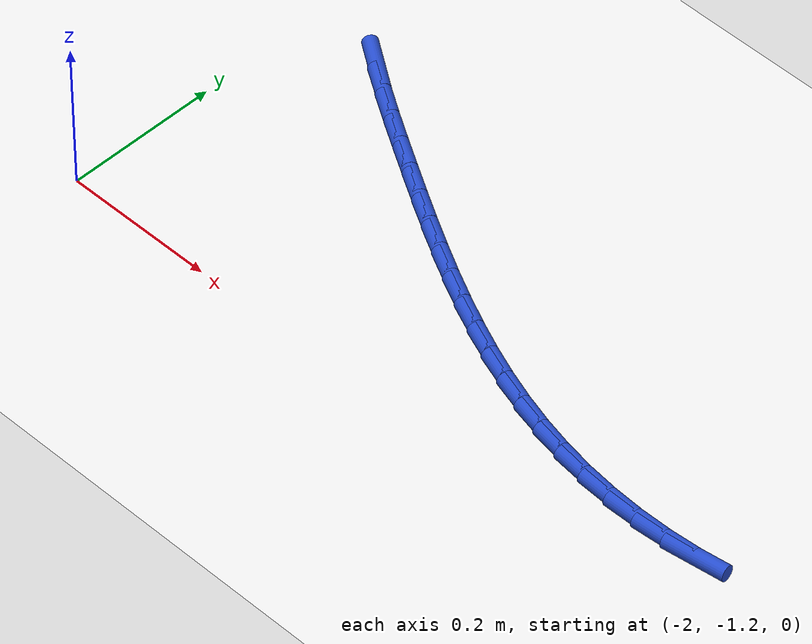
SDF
<sdf version="1.6">
 <world name="default">
  <model name="ground_plane">
   <static>1</static>
   <link name="link">
    <collision name="collision">
     <geometry><plane><normal>0 0 1</normal><size>100 100</size></plane></geometry>
     <surface><friction><ode><mu>100</mu><mu2>50</mu2></ode></friction></surface>
    </collision>
    <visual name="visual">
     <cast_shadows>0</cast_shadows>
     <geometry><plane><normal>0 0 1</normal><size>100 100</size></plane></geometry>
     <material>
      <script><uri>file://media/materials/scripts/gazebo.material</uri><name>Gazebo/WhiteGlow</name></script>
     </material>
    </visual>
   </link>
  </model>
  <model name="line">
   <link name="link_108">
    <pose>-1.8869920956878266 -0.8427963875069038 0.01 0 1.57 -0.600057680319079</pose>
    <collision name="collision">
     <geometry><cylinder><radius>0.01</radius><length>0.08</length></cylinder></geometry>
    </collision>
    <visual name="visual">
     <material>
      <script><name>Gazebo/Blue</name><uri>file://media/materials/scripts/gazebo.material</uri></script>
     </material>
     <geometry><cylinder><radius>0.01</radius><length>0.08</length></cylinder></geometry>
    </visual>
   </link>
   <link name="link_109">
    <pose>-1.852074827539309 -0.8666875327071744 0.01 0 1.57 -0.5691763671136789</pose>
    <collision name="collision">
     <geometry><cylinder><radius>0.01</radius><length>0.08</length></cylinder></geometry>
    </collision>
    <visual name="visual">
     <material>
      <script><name>Gazebo/Blue</name><uri>file://media/materials/scripts/gazebo.material</uri></script>
     </material>
     <geometry><cylinder><radius>0.01</radius><length>0.08</length></cylinder></geometry>
    </visual>
   </link>
   <link name="link_110">
    <pose>-1.81605808695402 -0.8897313008459227 0.01 0 1.57 -0.5500211801570817</pose>
    <collision name="collision">
     <geometry><cylinder><radius>0.01</radius><length>0.08</length></cylinder></geometry>
    </collision>
    <visual name="visual">
     <material>
      <script><name>Gazebo/Blue</name><uri>file://media/materials/scripts/gazebo.material</uri></script>
     </material>
     <geometry><cylinder><radius>0.01</radius><length>0.08</length></cylinder></geometry>
    </visual>
   </link>
   <link name="link_111">
    <pose>-1.7794528950814448 -0.9121752015690949 0.01 0 1.57 -0.5417710768865921</pose>
    <collision name="collision">
     <geometry><cylinder><radius>0.01</radius><length>0.08</length></cylinder></geometry>
    </collision>
    <visual name="visual">
     <material>
      <script><name>Gazebo/Blue</name><uri>file://media/materials/scripts/gazebo.material</uri></script>
     </material>
     <geometry><cylinder><radius>0.01</radius><length>0.08</length></cylinder></geometry>
    </visual>
   </link>
   <link name="link_112">
    <pose>-1.742759284182877 -0.9342588710385372 0.01 0 1.57 -0.5370126611332768</pose>
    <collision name="collision">
     <geometry><cylinder><radius>0.01</radius><length>0.08</length></cylinder></geometry>
    </collision>
    <visual name="visual">
     <material>
      <script><name>Gazebo/Blue</name><uri>file://media/materials/scripts/gazebo.material</uri></script>
     </material>
     <geometry><cylinder><radius>0.01</radius><length>0.08</length></cylinder></geometry>
    </visual>
   </link>
   <link name="link_113">
    <pose>-1.706201620029016 -0.9560244317374427 0.01 0 1.57 -0.5280489884835077</pose>
    <collision name="collision">
     <geometry><cylinder><radius>0.01</radius><length>0.08</length></cylinder></geometry>
    </collision>
    <visual name="visual">
     <material>
      <script><name>Gazebo/Blue</name><uri>file://media/materials/scripts/gazebo.material</uri></script>
     </material>
     <geometry><cylinder><radius>0.01</radius><length>0.08</length></cylinder></geometry>
    </visual>
   </link>
   <link name="link_114">
    <pose>-1.6697152320489788 -0.9773069130381693 0.01 0 1.57 -0.5144078990532482</pose>
    <collision name="collision">
     <geometry><cylinder><radius>0.01</radius><length>0.08</length></cylinder></geometry>
    </collision>
    <visual name="visual">
     <material>
      <script><name>Gazebo/Blue</name><uri>file://media/materials/scripts/gazebo.material</uri></script>
     </material>
     <geometry><cylinder><radius>0.01</radius><length>0.08</length></cylinder></geometry>
    </visual>
   </link>
   <link name="link_115">
    <pose>-1.633221784933153 -0.9979315535952831 0.01 0 1.57 -0.4959681884255443</pose>
    <collision name="collision">
     <geometry><cylinder><radius>0.01</radius><length>0.08</length></cylinder></geometry>
    </collision>
    <visual name="visual">
     <material>
      <script><name>Gazebo/Blue</name><uri>file://media/materials/scripts/gazebo.material</uri></script>
     </material>
     <geometry><cylinder><radius>0.01</radius><length>0.08</length></cylinder></geometry>
    </visual>
   </link>
   <link name="link_116">
    <pose>-1.596642943371927 -1.0177235920633476 0.01 0 1.57 -0.4726078155521831</pose>
    <collision name="collision">
     <geometry><cylinder><radius>0.01</radius><length>0.08</length></cylinder></geometry>
    </collision>
    <visual name="visual">
     <material>
      <script><name>Gazebo/Blue</name><uri>file://media/materials/scripts/gazebo.material</uri></script>
     </material>
     <geometry><cylinder><radius>0.01</radius><length>0.08</length></cylinder></geometry>
    </visual>
   </link>
   <link name="link_117">
    <pose>-1.5599003720556883 -1.0365082670969292 0.01 0 1.57 -0.4442168294046933</pose>
    <collision name="collision">
     <geometry><cylinder><radius>0.01</radius><length>0.08</length></cylinder></geometry>
    </collision>
    <visual name="visual">
     <material>
      <script><name>Gazebo/Blue</name><uri>file://media/materials/scripts/gazebo.material</uri></script>
     </material>
     <geometry><cylinder><radius>0.01</radius><length>0.08</length></cylinder></geometry>
    </visual>
   </link>
   <link name="link_118">
    <pose>-1.5229157356748244 -1.0541108173505935 0.01 0 1.57 -0.4107152126682764</pose>
    <collision name="collision">
     <geometry><cylinder><radius>0.01</radius><length>0.08</length></cylinder></geometry>
    </collision>
    <visual name="visual">
     <material>
      <script><name>Gazebo/Blue</name><uri>file://media/materials/scripts/gazebo.material</uri></script>
     </material>
     <geometry><cylinder><radius>0.01</radius><length>0.08</length></cylinder></geometry>
    </visual>
   </link>
   <link name="link_119">
    <pose>-1.4856106989197235 -1.0703564814789053 0.01 0 1.57 -0.3720758002350325</pose>
    <collision name="collision">
     <geometry><cylinder><radius>0.01</radius><length>0.08</length></cylinder></geometry>
    </collision>
    <visual name="visual">
     <material>
      <script><name>Gazebo/Blue</name><uri>file://media/materials/scripts/gazebo.material</uri></script>
     </material>
     <geometry><cylinder><radius>0.01</radius><length>0.08</length></cylinder></geometry>
    </visual>
   </link>
   <link name="link_120">
    <pose>-1.4479069264807733 -1.08507049813643 0.01 0 1.57 -0.328351628093782</pose>
    <collision name="collision">
     <geometry><cylinder><radius>0.01</radius><length>0.08</length></cylinder></geometry>
    </collision>
    <visual name="visual">
     <material>
      <script><name>Gazebo/Blue</name><uri>file://media/materials/scripts/gazebo.material</uri></script>
     </material>
     <geometry><cylinder><radius>0.01</radius><length>0.08</length></cylinder></geometry>
    </visual>
   </link>
   <link name="link_121">
    <pose>-1.409726083048361 -1.0980781059777334 0.01 0 1.57 -0.27970577591454315</pose>
    <collision name="collision">
     <geometry><cylinder><radius>0.01</radius><length>0.08</length></cylinder></geometry>
    </collision>
    <visual name="visual">
     <material>
      <script><name>Gazebo/Blue</name><uri>file://media/materials/scripts/gazebo.material</uri></script>
     </material>
     <geometry><cylinder><radius>0.01</radius><length>0.08</length></cylinder></geometry>
    </visual>
   </link>
   <link name="link_122">
    <pose>-1.3709898333128754 -1.10920454365738 0.01 0 1.57 -0.22644006120271212</pose>
    <collision name="collision">
     <geometry><cylinder><radius>0.01</radius><length>0.08</length></cylinder></geometry>
    </collision>
    <visual name="visual">
     <material>
      <script><name>Gazebo/Blue</name><uri>file://media/materials/scripts/gazebo.material</uri></script>
     </material>
     <geometry><cylinder><radius>0.01</radius><length>0.08</length></cylinder></geometry>
    </visual>
   </link>
   <link name="link_123">
    <pose>-1.3316198419647043 -1.1182750498299359 0.01 0 1.57 -0.16902413854825532</pose>
    <collision name="collision">
     <geometry><cylinder><radius>0.01</radius><length>0.08</length></cylinder></geometry>
    </collision>
    <visual name="visual">
     <material>
      <script><name>Gazebo/Blue</name><uri>file://media/materials/scripts/gazebo.material</uri></script>
     </material>
     <geometry><cylinder><radius>0.01</radius><length>0.08</length></cylinder></geometry>
    </visual>
   </link>
   <link name="link_124">
    <pose>-1.2915383764967538 -1.1251150470598854 0.01 0 1.57 -0.10919733554889177</pose>
    <collision name="collision">
     <geometry><cylinder><radius>0.01</radius><length>0.08</length></cylinder></geometry>
    </collision>
    <visual name="visual">
     <material>
      <script><name>Gazebo/Blue</name><uri>file://media/materials/scripts/gazebo.material</uri></script>
     </material>
     <geometry><cylinder><radius>0.01</radius><length>0.08</length></cylinder></geometry>
    </visual>
   </link>
   <link name="link_125">
    <pose>-1.2507783357051103 -1.1295837105810267 0.01 0 1.57 -0.04925684979870692</pose>
    <collision name="collision">
     <geometry><cylinder><radius>0.01</radius><length>0.08</length></cylinder></geometry>
    </collision>
    <visual name="visual">
     <material>
      <script><name>Gazebo/Blue</name><uri>file://media/materials/scripts/gazebo.material</uri></script>
     </material>
     <geometry><cylinder><radius>0.01</radius><length>0.08</length></cylinder></geometry>
    </visual>
   </link>
   <link name="link_126">
    <pose>-1.2096115123455111 -1.1316131001416578 0.01 0 1.57 0.011347221105103928</pose>
    <collision name="collision">
     <geometry><cylinder><radius>0.01</radius><length>0.08</length></cylinder></geometry>
    </collision>
    <visual name="visual">
     <material>
      <script><name>Gazebo/Blue</name><uri>file://media/materials/scripts/gazebo.material</uri></script>
     </material>
     <geometry><cylinder><radius>0.01</radius><length>0.08</length></cylinder></geometry>
    </visual>
   </link>
   <link name="link_127">
    <pose>-1.1683408274226084 -1.1311447724539712 0.01 0 1.57 0.07350668223300093</pose>
    <collision name="collision">
     <geometry><cylinder><radius>0.01</radius><length>0.08</length></cylinder></geometry>
    </collision>
    <visual name="visual">
     <material>
      <script><name>Gazebo/Blue</name><uri>file://media/materials/scripts/gazebo.material</uri></script>
     </material>
     <geometry><cylinder><radius>0.01</radius><length>0.08</length></cylinder></geometry>
    </visual>
   </link>
   <link name="link_128">
    <pose>-1.1272692019410513 -1.1281202842301594 0.01 0 1.57 0.13811288753462334</pose>
    <collision name="collision">
     <geometry><cylinder><radius>0.01</radius><length>0.08</length></cylinder></geometry>
    </collision>
    <visual name="visual">
     <material>
      <script><name>Gazebo/Blue</name><uri>file://media/materials/scripts/gazebo.material</uri></script>
     </material>
     <geometry><cylinder><radius>0.01</radius><length>0.08</length></cylinder></geometry>
    </visual>
   </link>
  </model>
 </world>
</sdf>
